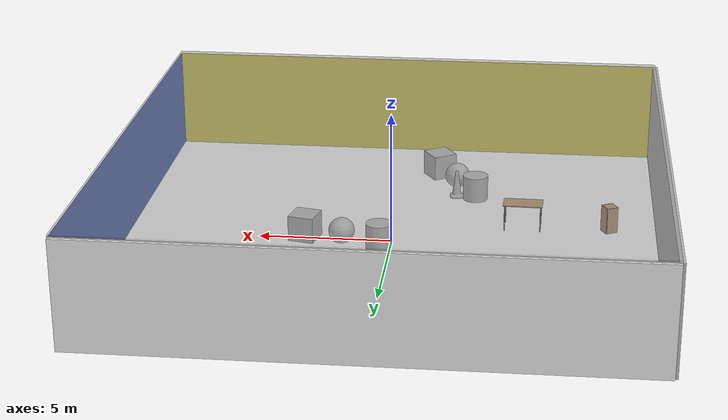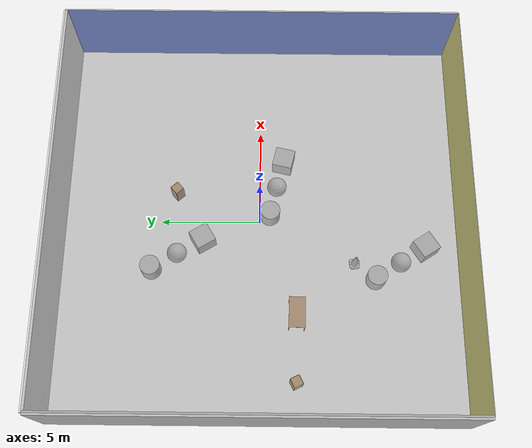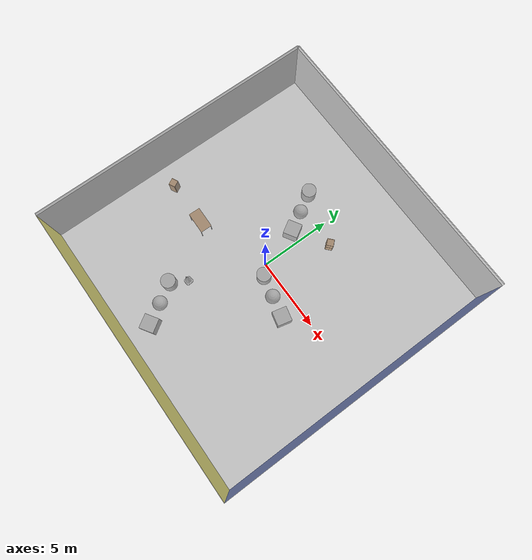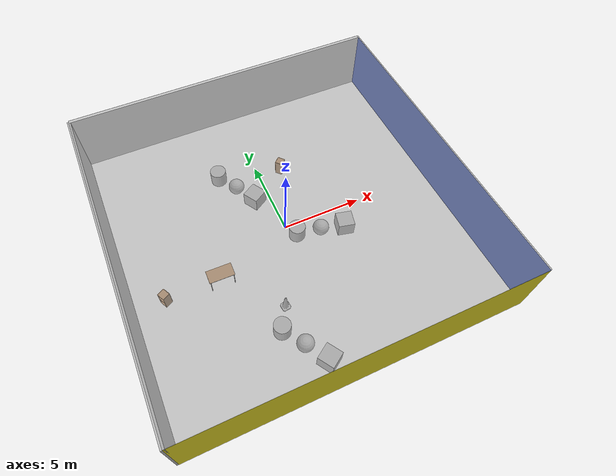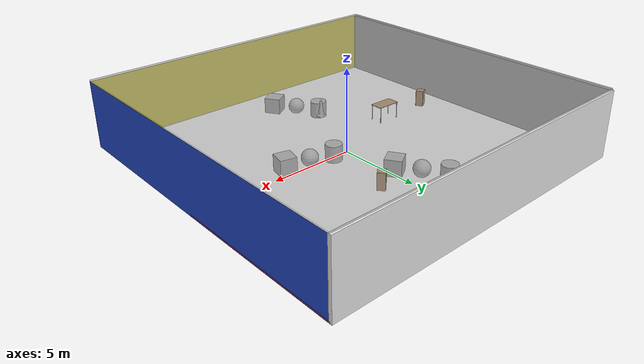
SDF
<sdf version="1.4">
 <world name="default">
  <physics type="ode">
   <max_step_size>0.001</max_step_size>
   <real_time_factor>1</real_time_factor>
   <real_time_update_rate>1000</real_time_update_rate>
   <gravity>0 0 -9.8</gravity>
  </physics>
  <scene><ambient>0.4 0.4 0.4 1</ambient><background>0.7 0.7 0.7 1</background><shadows>1</shadows></scene>
  <model name="Surrounding">
   <static>1</static>
   <link name="Ceiling">
    <collision name="Ceiling_Collision"><geometry><box><size>20 20 0.1</size></box></geometry></collision>
    <visual name="Ceiling_Visual">
     <geometry><box><size>20 20 0.1</size></box></geometry>
     <material>
      <script><uri>file://media/materials/scripts/gazebo.material</uri><name>Gazebo/GreyTransparent</name></script>
     </material>
    </visual>
    <pose>0 0 4.05 0 0 0</pose>
   </link>
   <link name="Wall_South">
    <collision name="Wall_South_Collision">
     <geometry><box><size>20 0 4</size></box></geometry>
     <pose>0 0 2 0 -0 0</pose>
    </collision>
    <visual name="Wall_South_Visual">
     <pose>0 0 2 0 -0 0</pose>
     <geometry><box><size>20 0 4</size></box></geometry>
     <material>
      <script><uri>file://media/materials/scripts/gazebo.material</uri><name>Gazebo/Yellow</name></script>
     </material>
    </visual>
    <velocity_decay><linear>0</linear><angular>0</angular></velocity_decay>
    <pose>0 -10 0 0 -0 0</pose>
   </link>
   <link name="Wall_East">
    <collision name="Wall_21_Collision">
     <geometry><box><size>20 0 4</size></box></geometry>
     <pose>0 0 2 0 -0 0</pose>
    </collision>
    <visual name="Wall_21_Visual">
     <pose>0 0 2 0 -0 0</pose>
     <geometry><box><size>20 0 4</size></box></geometry>
     <material>
      <script><uri>file://media/materials/scripts/gazebo.material</uri><name>Gazebo/Blue</name></script>
     </material>
    </visual>
    <velocity_decay><linear>0</linear><angular>0</angular></velocity_decay>
    <pose>10 0 0 0 -0 1.5708</pose>
   </link>
   <link name="Wall_North">
    <collision name="Wall_22_Collision">
     <geometry><box><size>20 0.2 4</size></box></geometry>
     <pose>0 0 2 0 -0 0</pose>
    </collision>
    <visual name="Wall_22_Visual">
     <pose>0 0 2 0 -0 0</pose>
     <geometry><box><size>20 0.2 4</size></box></geometry>
     <material>
      <script><uri>file://media/materials/scripts/gazebo.material</uri><name>Gazebo/White</name></script>
     </material>
    </visual>
    <velocity_decay><linear>0</linear><angular>0</angular></velocity_decay>
    <pose>0 10 0 0 -0 0</pose>
   </link>
   <link name="Wall_West">
    <collision name="Wall_23_Collision">
     <geometry><box><size>20 0.2 4</size></box></geometry>
     <pose>0 0 2 0 -0 0</pose>
    </collision>
    <visual name="Wall_23_Visual">
     <pose>0 0 2 0 -0 0</pose>
     <geometry><box><size>20 0.2 4</size></box></geometry>
     <material>
      <script><uri>file://media/materials/scripts/gazebo.material</uri><name>Gazebo/Pioneer2Body</name></script>
     </material>
    </visual>
    <velocity_decay><linear>0</linear><angular>0</angular></velocity_decay>
    <pose>-10 0 0 0 0 -1.5708</pose>
   </link>
   <link name="Ground_link">
    <collision name="collision">
     <pose>0 0 .05 0 -0 0</pose>
     <geometry><box><size>20 20 0.1</size></box></geometry>
    </collision>
    <visual name="visual">
     <pose>0 0 .05 0 -0 0</pose>
     <geometry><box><size>20 20 0.1</size></box></geometry>
     <material>
      <script><uri>file://media/materials/scripts/gazebo.material</uri><name>Gazebo/RedTransparent</name></script>
     </material>
    </visual>
   </link>
   <static>1</static>
  </model>
  <spherical_coordinates>
   <surface_model>EARTH_WGS84</surface_model>
   <latitude_deg>0</latitude_deg>
   <longitude_deg>0</longitude_deg>
   <elevation>0</elevation>
   <heading_deg>0</heading_deg>
  </spherical_coordinates>
  <light name="lightball_0" type="diffuse">
   <diffuse>0.8 0.8 0.8 1</diffuse>
   <specular>0.2 0.2 0.2 1</specular>
   <attenuation>
    <range>100</range>
    <constant>0.7</constant>
    <linear>0.01</linear>
    <quadratic>0.001</quadratic>
   </attenuation>
   <direction>-0.5 0.1 -0.9</direction>
   <pose>-5.75528549053 -8.42556191709 1.78036347945 0 0 0</pose>
  </light>
  <light name="lightball_1" type="diffuse">
   <diffuse>0.8 0.8 0.8 1</diffuse>
   <specular>0.2 0.2 0.2 1</specular>
   <attenuation>
    <range>100</range>
    <constant>0.7</constant>
    <linear>0.01</linear>
    <quadratic>0.001</quadratic>
   </attenuation>
   <direction>-0.5 0.1 -0.9</direction>
   <pose>-7.88946490017 0.398695732149 2.04968388462 0 0 0</pose>
  </light>
  <light name="lightball_2" type="diffuse">
   <diffuse>0.8 0.8 0.8 1</diffuse>
   <specular>0.2 0.2 0.2 1</specular>
   <attenuation>
    <range>100</range>
    <constant>0.7</constant>
    <linear>0.01</linear>
    <quadratic>0.001</quadratic>
   </attenuation>
   <direction>-0.5 0.1 -0.9</direction>
   <pose>9.56150414226 3.15497989165 3.15458828978 0 0 0</pose>
  </light>
  <light name="lightball_3" type="diffuse">
   <diffuse>0.8 0.8 0.8 1</diffuse>
   <specular>0.2 0.2 0.2 1</specular>
   <attenuation>
    <range>100</range>
    <constant>0.7</constant>
    <linear>0.01</linear>
    <quadratic>0.001</quadratic>
   </attenuation>
   <direction>-0.5 0.1 -0.9</direction>
   <pose>1.58031185852 0.383012771271 3.07076433937 0 0 0</pose>
  </light>
  <light name="lightball_4" type="diffuse">
   <diffuse>0.8 0.8 0.8 1</diffuse>
   <specular>0.2 0.2 0.2 1</specular>
   <attenuation>
    <range>100</range>
    <constant>0.7</constant>
    <linear>0.01</linear>
    <quadratic>0.001</quadratic>
   </attenuation>
   <direction>-0.5 0.1 -0.9</direction>
   <pose>8.79785710249 -7.21190743482 1.91599335654 0 0 0</pose>
  </light>
  <light name="lightball_5" type="diffuse">
   <diffuse>0.8 0.8 0.8 1</diffuse>
   <specular>0.2 0.2 0.2 1</specular>
   <attenuation>
    <range>100</range>
    <constant>0.7</constant>
    <linear>0.01</linear>
    <quadratic>0.001</quadratic>
   </attenuation>
   <direction>-0.5 0.1 -0.9</direction>
   <pose>0.787247162014 -8.987249329 2.14540053975 0 0 0</pose>
  </light>
  <light name="lightball_6" type="diffuse">
   <diffuse>0.8 0.8 0.8 1</diffuse>
   <specular>0.2 0.2 0.2 1</specular>
   <attenuation>
    <range>100</range>
    <constant>0.7</constant>
    <linear>0.01</linear>
    <quadratic>0.001</quadratic>
   </attenuation>
   <direction>-0.5 0.1 -0.9</direction>
   <pose>4.42323837095 -6.30162781907 1.50623942733 0 0 0</pose>
  </light>
  <light name="lightball_7" type="diffuse">
   <diffuse>0.8 0.8 0.8 1</diffuse>
   <specular>0.2 0.2 0.2 1</specular>
   <attenuation>
    <range>100</range>
    <constant>0.7</constant>
    <linear>0.01</linear>
    <quadratic>0.001</quadratic>
   </attenuation>
   <direction>-0.5 0.1 -0.9</direction>
   <pose>5.01768879994 -2.14352341657 2.1270279716 0 0 0</pose>
  </light>
  <light name="lightball_8" type="diffuse">
   <diffuse>0.8 0.8 0.8 1</diffuse>
   <specular>0.2 0.2 0.2 1</specular>
   <attenuation>
    <range>100</range>
    <constant>0.7</constant>
    <linear>0.01</linear>
    <quadratic>0.001</quadratic>
   </attenuation>
   <direction>-0.5 0.1 -0.9</direction>
   <pose>-5.92026968318 -0.911092801465 2.21802237084 0 0 0</pose>
  </light>
  <light name="lightball_9" type="diffuse">
   <diffuse>0.8 0.8 0.8 1</diffuse>
   <specular>0.2 0.2 0.2 1</specular>
   <attenuation>
    <range>100</range>
    <constant>0.7</constant>
    <linear>0.01</linear>
    <quadratic>0.001</quadratic>
   </attenuation>
   <direction>-0.5 0.1 -0.9</direction>
   <pose>-6.92605762072 9.83625047112 3.82350410269 0 0 0</pose>
  </light>
  <light name="lightball_10" type="diffuse">
   <diffuse>0.8 0.8 0.8 1</diffuse>
   <specular>0.2 0.2 0.2 1</specular>
   <attenuation>
    <range>100</range>
    <constant>0.7</constant>
    <linear>0.01</linear>
    <quadratic>0.001</quadratic>
   </attenuation>
   <direction>-0.5 0.1 -0.9</direction>
   <pose>4.68982052428 8.42342487016 1.3325482039 0 0 0</pose>
  </light>
  <light name="lightball_11" type="diffuse">
   <diffuse>0.8 0.8 0.8 1</diffuse>
   <specular>0.2 0.2 0.2 1</specular>
   <attenuation>
    <range>100</range>
    <constant>0.7</constant>
    <linear>0.01</linear>
    <quadratic>0.001</quadratic>
   </attenuation>
   <direction>-0.5 0.1 -0.9</direction>
   <pose>-8.88999494701 -2.89059668495 2.35493465429 0 0 0</pose>
  </light>
  <include><uri>model://cabinet</uri><pose>-8.13649046385 -1.80007837878 0 0 0 0.472207699667</pose></include>
  <include><uri>model://table</uri><pose>-4.84903408112 -1.84180217106 0 0 0 3.11945092538</pose></include>
  <include>
   <uri>model://textured_shapes</uri>
   <pose>-2.02130812915 -7.12684961869 0 0 0 0.571120499796</pose>
  </include>
  <include>
   <uri>model://construction_cone</uri>
   <pose>-2.14024698946 -4.76873194981 0 0 0 0.106077649107</pose>
  </include>
  <include>
   <uri>model://textured_shapes</uri>
   <pose>-1.63360300538 4.18009433249 0 0 0 0.542624194369</pose>
  </include>
  <include>
   <uri>model://textured_shapes</uri>
   <pose>2.00170073755 -0.86868660102 0 0 0 1.34020757059</pose>
  </include>
  <include><uri>model://cabinet</uri><pose>1.49448255996 4.20730660536 0 0 0 2.2949891588</pose></include>
 </world>
</sdf>

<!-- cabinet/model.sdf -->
<sdf version="1.5">
  <model name="cabinet">
    <static>true</static>
    <link name="cabinet_bottom_plate">
      <inertial>
        <pose>0 0 -1 0 0 0</pose>
        <inertia>
          <ixx>2.050000</ixx>
          <ixy>0</ixy>
          <ixz>0</ixz>
          <iyy>2.050000</iyy>
          <iyz>0</iyz>
          <izz>2.050000</izz>
        </inertia>
        <mass>25.000000</mass>
      </inertial>
      <collision name="cabinet_bottom_plate_geom">
        <pose>0 0 0.010000 0 0 0</pose>
        <geometry>
          <box>
            <size>0.450000 0.450000 0.020000</size>
          </box>
        </geometry>
      </collision>
      <visual name="cabinet_bottom_plate_geom_visual">
        <pose>0 0 0.010000 0 0 0</pose>
        <geometry>
          <box>
            <size>0.450000 0.450000 0.020000</size>
          </box>
        </geometry>
        <material>
          <script>
            <uri>model://media/materials/scripts/gazebo.material</uri>
            <name>Gazebo/Wood</name>
          </script>
        </material>
      </visual>
      <collision name="cabinet_bottom_plate_geom_cabinet_back_plate">
        <pose>0.235000 0 0.510000 0 0 0</pose>
        <geometry>
          <box>
            <size>0.020000 0.450000 1.020000</size>
          </box>
        </geometry>
      </collision>
      <visual name="cabinet_bottom_plate_geom_cabinet_back_plate_visual">
        <pose>0.235000 0 0.510000 0 0 0</pose>
        <geometry>
          <box>
            <size>0.020000 0.450000 1.020000</size>
          </box>
        </geometry>
        <material>
          <script>
            <uri>model://media/materials/scripts/gazebo.material</uri>
            <name>Gazebo/Wood</name>
          </script>
        </material>
      </visual>
      <collision name="cabinet_bottom_plate_geom_cabinet_left_plate">
        <pose>0 0.235000 0.510000 0 0 0</pose>
        <geometry>
          <box>
            <size>0.450000 0.020000 1.020000</size>
          </box>
        </geometry>
      </collision>
      <visual name="cabinet_bottom_plate_geom_cabinet_left_plate_visual">
        <pose>0 0.235000 0.510000 0 0 0</pose>
        <geometry>
          <box>
            <size>0.450000 0.020000 1.020000</size>
          </box>
        </geometry>
        <material>
          <script>
            <uri>model://media/materials/scripts/gazebo.material</uri>
            <name>Gazebo/Wood</name>
          </script>
        </material>
      </visual>
      <collision name="cabinet_bottom_plate_geom_cabinet_middle_plate">
        <pose>0 0 0.510000 0 0 0</pose>
        <geometry>
          <box>
            <size>0.450000 0.450000 0.020000</size>
          </box>
        </geometry>
      </collision>
      <visual name="cabinet_bottom_plate_geom_cabinet_middle_plate_visual">
        <pose>0 0 0.510000 0 0 0</pose>
        <geometry>
          <box>
            <size>0.450000 0.450000 0.020000</size>
          </box>
        </geometry>
        <material>
          <script>
            <uri>model://media/materials/scripts/gazebo.material</uri>
            <name>Gazebo/Wood</name>
          </script>
        </material>
      </visual>
      <collision name="cabinet_bottom_plate_geom_cabinet_right_plate">
        <pose>0 -0.235000 0.510000 0 0 0</pose>
        <geometry>
          <box>
            <size>0.450000 0.020000 1.020000</size>
          </box>
        </geometry>
      </collision>
      <visual name="cabinet_bottom_plate_geom_cabinet_right_plate_visual">
        <pose>0 -0.235000 0.510000 0 0 0</pose>
        <geometry>
          <box>
            <size>0.450000 0.020000 1.020000</size>
          </box>
        </geometry>
        <material>
          <script>
            <uri>model://media/materials/scripts/gazebo.material</uri>
            <name>Gazebo/Wood</name>
          </script>
        </material>
      </visual>
      <collision name="cabinet_bottom_plate_geom_cabinet_top_plate">
        <pose>0 0 1.010000 0 0 0</pose>
        <geometry>
          <box>
            <size>0.450000 0.450000 0.020000</size>
          </box>
        </geometry>
      </collision>
      <visual name="cabinet_bottom_plate_geom_cabinet_top_plate_visual">
        <pose>0 0 1.010000 0 0 0</pose>
        <geometry>
          <box>
            <size>0.450000 0.450000 0.020000</size>
          </box>
        </geometry>
        <material>
          <script>
            <uri>model://media/materials/scripts/gazebo.material</uri>
            <name>Gazebo/Wood</name>
          </script>
        </material>
      </visual>
    </link>
  </model>
</sdf>

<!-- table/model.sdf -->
<sdf version="1.5">
  <model name="table">
    <static>true</static>
    <link name="link">
      <collision name="surface">
        <pose>0 0 1.0 0 0 0</pose>
        <geometry>
          <box>
            <size>1.5 0.8 0.03</size>
          </box>
        </geometry>
        <surface>
          <friction>
            <ode>
              <mu>0.6</mu>
              <mu2>0.6</mu2>
            </ode>
          </friction>
        </surface>
      </collision>
      <visual name="visual1">
        <pose>0 0 1.0 0 0 0</pose>
        <geometry>
          <box>
            <size>1.5 0.8 0.03</size>
          </box>
        </geometry>
        <material>
          <script>
            <uri>model://media/materials/scripts/gazebo.material</uri>
            <name>Gazebo/Wood</name>
          </script>
        </material>
      </visual>
      <collision name="front_left_leg">
        <pose>0.68 0.38 0.5 0 0 0</pose>
        <geometry>
          <cylinder>
            <radius>0.02</radius>
            <length>1.0</length>
          </cylinder>
        </geometry>
      </collision>
      <visual name="front_left_leg">
        <pose>0.68 0.38 0.5 0 0 0</pose>
        <geometry>
          <cylinder>
            <radius>0.02</radius>
            <length>1.0</length>
          </cylinder>
        </geometry>
        <material>
          <script>
            <uri>model://media/materials/scripts/gazebo.material</uri>
            <name>Gazebo/Grey</name>
          </script>
        </material>
      </visual>
      <collision name="front_right_leg">
        <pose>0.68 -0.38 0.5 0 0 0</pose>
        <geometry>
          <cylinder>
            <radius>0.02</radius>
            <length>1.0</length>
          </cylinder>
        </geometry>
      </collision>
      <visual name="front_right_leg">
        <pose>0.68 -0.38 0.5 0 0 0</pose>
        <geometry>
          <cylinder>
            <radius>0.02</radius>
            <length>1.0</length>
          </cylinder>
        </geometry>
        <material>
          <script>
            <uri>model://media/materials/scripts/gazebo.material</uri>
            <name>Gazebo/Grey</name>
          </script>
        </material>
      </visual>
      <collision name="back_right_leg">
        <pose>-0.68 -0.38 0.5 0 0 0</pose>
        <geometry>
          <cylinder>
            <radius>0.02</radius>
            <length>1.0</length>
          </cylinder>
        </geometry>
      </collision>
      <visual name="back_right_leg">
        <pose>-0.68 -0.38 0.5 0 0 0</pose>
        <geometry>
          <cylinder>
            <radius>0.02</radius>
            <length>1.0</length>
          </cylinder>
        </geometry>
        <material>
          <script>
            <uri>model://media/materials/scripts/gazebo.material</uri>
            <name>Gazebo/Grey</name>
          </script>
        </material>
      </visual>
      <collision name="back_left_leg">
        <pose>-0.68 0.38 0.5 0 0 0</pose>
        <geometry>
          <cylinder>
            <radius>0.02</radius>
            <length>1.0</length>
          </cylinder>
        </geometry>
      </collision>
      <visual name="back_left_leg">
        <pose>-0.68 0.38 0.5 0 0 0</pose>
        <geometry>
          <cylinder>
            <radius>0.02</radius>
            <length>1.0</length>
          </cylinder>
        </geometry>
        <material>
          <script>
            <uri>model://media/materials/scripts/gazebo.material</uri>
            <name>Gazebo/Grey</name>
          </script>
        </material>
      </visual>
    </link>
  </model>
</sdf>

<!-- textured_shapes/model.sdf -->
<sdf version="1.6">
  <model name="textured_shapes">
    <pose>0 0 0.5 0 0 0</pose>
    <link name="box">
      <pose>0 -1.5 0 0 0 0</pose>
      <collision name="collision">
        <geometry>
          <box>
            <size>1 1 1</size>
          </box>
        </geometry>
      </collision>
      <visual name="visual">
        <geometry>
          <box>
            <size>1 1 1</size>
          </box>
        </geometry>
        <material>
          <script>
            <uri>model://../model_source/models/textured_shapes/materials/scripts</uri>
            <uri>model://../model_source/models/textured_shapes/materials/textures</uri>
            <name>TexturedShape/Squares</name>
          </script>
        </material>
      </visual>
    </link>
    <link name="sphere">
      <collision name="collision">
        <geometry>
          <sphere>
            <radius>0.5</radius>
          </sphere>
        </geometry>
      </collision>
      <visual name="visual">
        <geometry>
          <sphere>
            <radius>0.5</radius>
          </sphere>
        </geometry>
        <material>
          <script>
            <uri>model://../model_source/models/textured_shapes/materials/scripts</uri>
            <uri>model://../model_source/models/textured_shapes/materials/textures</uri>
            <name>TexturedShape/Squares</name>
          </script>
        </material>
      </visual>
    </link>
    <link name="cylinder">
      <pose>0 1.5 0 0 0 0</pose>
      <collision name="collision">
        <geometry>
          <cylinder>
            <radius>0.5</radius>
            <length>1</length>
          </cylinder>
        </geometry>
      </collision>
      <visual name="visual">
        <geometry>
          <cylinder>
            <radius>0.5</radius>
            <length>1</length>
          </cylinder>
        </geometry>
        <material>
          <script>
            <uri>model://../model_source/models/textured_shapes/materials/scripts</uri>
            <uri>model://../model_source/models/textured_shapes/materials/textures</uri>
            <name>TexturedShape/Squares</name>
          </script>
        </material>
      </visual>
    </link>
  </model>
</sdf>

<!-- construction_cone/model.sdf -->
<sdf version="1.5">
  <model name="Construction Cone">
    <link name="link">
      <collision name="collision">
        <geometry>
          <mesh>
            <scale>10 10 10</scale>
            <uri>file://isr-testbed/construction_cone/meshes/construction_cone.dae</uri>
          </mesh>
        </geometry>
      </collision>
      <visual name="visual">
        <geometry>
          <mesh>
            <scale>10 10 10</scale>
            <uri>file://isr-testbed/construction_cone/meshes/construction_cone.dae</uri>
          </mesh>
        </geometry>
      </visual>
    </link>
  </model>
</sdf>
